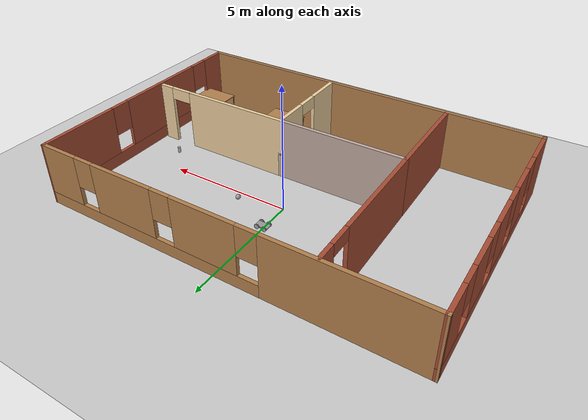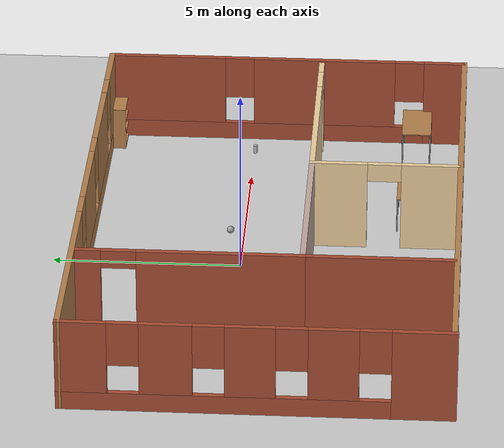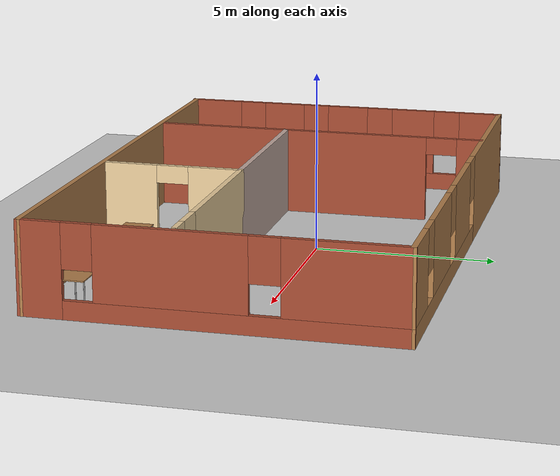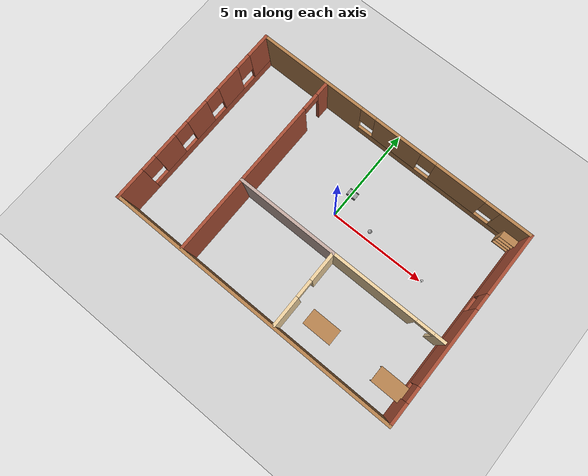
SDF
<sdf version="1.6">
 <world name="default">
  <model name="ground_plane">
   <static>1</static>
   <link name="link">
    <collision name="collision">
     <geometry><plane><normal>0 0 1</normal><size>100 100</size></plane></geometry>
     <surface>
      <contact><collide_bitmask>65535</collide_bitmask></contact>
      <friction><ode><mu>100</mu><mu2>50</mu2></ode></friction>
     </surface>
    </collision>
    <visual name="visual">
     <cast_shadows>0</cast_shadows>
     <geometry><plane><normal>0 0 1</normal><size>100 100</size></plane></geometry>
     <material>
      <script><uri>file://media/materials/scripts/gazebo.material</uri><name>Gazebo/Grey</name></script>
     </material>
    </visual>
   </link>
  </model>
  <model name="project_structure">
   <pose>-0.032624 -0.85735 0 0 -0 0</pose>
   <link name="Wall_15">
    <collision name="Wall_15_Collision">
     <geometry><box><size>14.9541 0.15 2.5</size></box></geometry>
     <pose>0 0 1.25 0 -0 0</pose>
    </collision>
    <visual name="Wall_15_Visual">
     <pose>0 0 1.25 0 -0 0</pose>
     <geometry><box><size>14.9541 0.15 2.5</size></box></geometry>
     <material>
      <script><uri>file://media/materials/scripts/gazebo.material</uri><name>Gazebo/Wood</name></script>
      <ambient>0.921569 0.807843 0.615686 1</ambient>
     </material>
     <meta><layer>0</layer></meta>
    </visual>
    <pose>0.011442 -4.91344 0 0 0 -0.003107</pose>
   </link>
   <link name="Wall_21">
    <pose>-7.41356 0.011558 0 0 -0 1.5708</pose>
    <visual name="Wall_21_Visual_0">
     <pose>-4.18397 0 1.25 0 -0 0</pose>
     <geometry><box><size>1.63206 0.15 2.5</size></box></geometry>
     <material>
      <script><uri>file://media/materials/scripts/gazebo.material</uri><name>Gazebo/Bricks</name></script>
      <ambient>0.760784 0.662745 0.627451 1</ambient>
     </material>
     <meta><layer>0</layer></meta>
    </visual>
    <collision name="Wall_21_Collision_0">
     <geometry><box><size>1.63206 0.15 2.5</size></box></geometry>
     <pose>-4.18397 0 1.25 0 -0 0</pose>
    </collision>
    <visual name="Wall_21_Visual_1">
     <pose>0.816032 0 0.25 0 -0 0</pose>
     <geometry><box><size>8.36794 0.15 0.5</size></box></geometry>
     <material>
      <script><uri>file://media/materials/scripts/gazebo.material</uri><name>Gazebo/Bricks</name></script>
      <ambient>0.760784 0.662745 0.627451 1</ambient>
     </material>
     <meta><layer>0</layer></meta>
    </visual>
    <collision name="Wall_21_Collision_1">
     <geometry><box><size>8.36794 0.15 0.5</size></box></geometry>
     <pose>0.816032 0 0.25 0 -0 0</pose>
    </collision>
    <visual name="Wall_21_Visual_2">
     <pose>-1.93374 0 1.5 0 -0 0</pose>
     <geometry><box><size>1.26839 0.15 2</size></box></geometry>
     <material>
      <script><uri>file://media/materials/scripts/gazebo.material</uri><name>Gazebo/Bricks</name></script>
      <ambient>0.760784 0.662745 0.627451 1</ambient>
     </material>
     <meta><layer>0</layer></meta>
    </visual>
    <collision name="Wall_21_Collision_2">
     <geometry><box><size>1.26839 0.15 2</size></box></geometry>
     <pose>-1.93374 0 1.5 0 -0 0</pose>
    </collision>
    <visual name="Wall_21_Visual_3">
     <pose>0.134648 0 1.5 0 -0 0</pose>
     <geometry><box><size>1.26839 0.15 2</size></box></geometry>
     <material>
      <script><uri>file://media/materials/scripts/gazebo.material</uri><name>Gazebo/Bricks</name></script>
      <ambient>0.760784 0.662745 0.627451 1</ambient>
     </material>
     <meta><layer>0</layer></meta>
    </visual>
    <collision name="Wall_21_Collision_3">
     <geometry><box><size>1.26839 0.15 2</size></box></geometry>
     <pose>0.134648 0 1.5 0 -0 0</pose>
    </collision>
    <visual name="Wall_21_Visual_4">
     <pose>2.23346 0 1.5 0 -0 0</pose>
     <geometry><box><size>1.32923 0.15 2</size></box></geometry>
     <material>
      <script><uri>file://media/materials/scripts/gazebo.material</uri><name>Gazebo/Bricks</name></script>
      <ambient>0.760784 0.662745 0.627451 1</ambient>
     </material>
     <meta><layer>0</layer></meta>
    </visual>
    <collision name="Wall_21_Collision_4">
     <geometry><box><size>1.32923 0.15 2</size></box></geometry>
     <pose>2.23346 0 1.5 0 -0 0</pose>
    </collision>
    <visual name="Wall_21_Visual_5">
     <pose>4.34903 0 1.5 0 -0 0</pose>
     <geometry><box><size>1.30193 0.15 2</size></box></geometry>
     <material>
      <script><uri>file://media/materials/scripts/gazebo.material</uri><name>Gazebo/Bricks</name></script>
      <ambient>0.760784 0.662745 0.627451 1</ambient>
     </material>
     <meta><layer>0</layer></meta>
    </visual>
    <collision name="Wall_21_Collision_5">
     <geometry><box><size>1.30193 0.15 2</size></box></geometry>
     <pose>4.34903 0 1.5 0 -0 0</pose>
    </collision>
    <visual name="Wall_21_Visual_6">
     <pose>-2.96794 0 1.9 0 -0 0</pose>
     <geometry><box><size>0.8 0.15 1.2</size></box></geometry>
     <material>
      <script><uri>file://media/materials/scripts/gazebo.material</uri><name>Gazebo/Bricks</name></script>
      <ambient>0.760784 0.662745 0.627451 1</ambient>
     </material>
     <meta><layer>0</layer></meta>
    </visual>
    <collision name="Wall_21_Collision_6">
     <geometry><box><size>0.8 0.15 1.2</size></box></geometry>
     <pose>-2.96794 0 1.9 0 -0 0</pose>
    </collision>
    <visual name="Wall_21_Visual_7">
     <pose>-0.899547 0 1.9 0 -0 0</pose>
     <geometry><box><size>0.8 0.15 1.2</size></box></geometry>
     <material>
      <script><uri>file://media/materials/scripts/gazebo.material</uri><name>Gazebo/Bricks</name></script>
      <ambient>0.760784 0.662745 0.627451 1</ambient>
     </material>
     <meta><layer>0</layer></meta>
    </visual>
    <collision name="Wall_21_Collision_7">
     <geometry><box><size>0.8 0.15 1.2</size></box></geometry>
     <pose>-0.899547 0 1.9 0 -0 0</pose>
    </collision>
    <visual name="Wall_21_Visual_8">
     <pose>1.16884 0 1.9 0 -0 0</pose>
     <geometry><box><size>0.8 0.15 1.2</size></box></geometry>
     <material>
      <script><uri>file://media/materials/scripts/gazebo.material</uri><name>Gazebo/Bricks</name></script>
      <ambient>0.760784 0.662745 0.627451 1</ambient>
     </material>
     <meta><layer>0</layer></meta>
    </visual>
    <collision name="Wall_21_Collision_8">
     <geometry><box><size>0.8 0.15 1.2</size></box></geometry>
     <pose>1.16884 0 1.9 0 -0 0</pose>
    </collision>
    <visual name="Wall_21_Visual_9">
     <pose>3.29807 0 1.9 0 -0 0</pose>
     <geometry><box><size>0.8 0.15 1.2</size></box></geometry>
     <material>
      <script><uri>file://media/materials/scripts/gazebo.material</uri><name>Gazebo/Bricks</name></script>
      <ambient>0.760784 0.662745 0.627451 1</ambient>
     </material>
     <meta><layer>0</layer></meta>
    </visual>
    <collision name="Wall_21_Collision_9">
     <geometry><box><size>0.8 0.15 1.2</size></box></geometry>
     <pose>3.29807 0 1.9 0 -0 0</pose>
    </collision>
   </link>
   <link name="Wall_23">
    <pose>7.41344 -0.011442 0 0 -0 1.5708</pose>
    <visual name="Wall_23_Visual_0">
     <pose>-4.4006 0 1.25 0 -0 0</pose>
     <geometry><box><size>1.1988 0.15 2.5</size></box></geometry>
     <material>
      <script><uri>file://media/materials/scripts/gazebo.material</uri><name>Gazebo/Bricks</name></script>
      <ambient>0.921569 0.807843 0.615686 1</ambient>
     </material>
     <meta><layer>0</layer></meta>
    </visual>
    <collision name="Wall_23_Collision_0">
     <geometry><box><size>1.1988 0.15 2.5</size></box></geometry>
     <pose>-4.4006 0 1.25 0 -0 0</pose>
    </collision>
    <visual name="Wall_23_Visual_1">
     <pose>0.5994 0 0.25 0 -0 0</pose>
     <geometry><box><size>8.8012 0.15 0.5</size></box></geometry>
     <material>
      <script><uri>file://media/materials/scripts/gazebo.material</uri><name>Gazebo/Bricks</name></script>
      <ambient>0.921569 0.807843 0.615686 1</ambient>
     </material>
     <meta><layer>0</layer></meta>
    </visual>
    <collision name="Wall_23_Collision_1">
     <geometry><box><size>8.8012 0.15 0.5</size></box></geometry>
     <pose>0.5994 0 0.25 0 -0 0</pose>
    </collision>
    <visual name="Wall_23_Visual_2">
     <pose>-1.02863 0 1.5 0 -0 0</pose>
     <geometry><box><size>3.94513 0.15 2</size></box></geometry>
     <material>
      <script><uri>file://media/materials/scripts/gazebo.material</uri><name>Gazebo/Bricks</name></script>
      <ambient>0.921569 0.807843 0.615686 1</ambient>
     </material>
     <meta><layer>0</layer></meta>
    </visual>
    <collision name="Wall_23_Collision_2">
     <geometry><box><size>3.94513 0.15 2</size></box></geometry>
     <pose>-1.02863 0 1.5 0 -0 0</pose>
    </collision>
    <visual name="Wall_23_Visual_3">
     <pose>3.37196 0 1.5 0 -0 0</pose>
     <geometry><box><size>3.25607 0.15 2</size></box></geometry>
     <material>
      <script><uri>file://media/materials/scripts/gazebo.material</uri><name>Gazebo/Bricks</name></script>
      <ambient>0.921569 0.807843 0.615686 1</ambient>
     </material>
     <meta><layer>0</layer></meta>
    </visual>
    <collision name="Wall_23_Collision_3">
     <geometry><box><size>3.25607 0.15 2</size></box></geometry>
     <pose>3.37196 0 1.5 0 -0 0</pose>
    </collision>
    <visual name="Wall_23_Visual_4">
     <pose>-3.4012 0 1.9 0 -0 0</pose>
     <geometry><box><size>0.8 0.15 1.2</size></box></geometry>
     <material>
      <script><uri>file://media/materials/scripts/gazebo.material</uri><name>Gazebo/Bricks</name></script>
      <ambient>0.921569 0.807843 0.615686 1</ambient>
     </material>
     <meta><layer>0</layer></meta>
    </visual>
    <collision name="Wall_23_Collision_4">
     <geometry><box><size>0.8 0.15 1.2</size></box></geometry>
     <pose>-3.4012 0 1.9 0 -0 0</pose>
    </collision>
    <visual name="Wall_23_Visual_5">
     <pose>1.34393 0 1.9 0 -0 0</pose>
     <geometry><box><size>0.8 0.15 1.2</size></box></geometry>
     <material>
      <script><uri>file://media/materials/scripts/gazebo.material</uri><name>Gazebo/Bricks</name></script>
      <ambient>0.921569 0.807843 0.615686 1</ambient>
     </material>
     <meta><layer>0</layer></meta>
    </visual>
    <collision name="Wall_23_Collision_5">
     <geometry><box><size>0.8 0.15 1.2</size></box></geometry>
     <pose>1.34393 0 1.9 0 -0 0</pose>
    </collision>
   </link>
   <link name="Wall_25">
    <pose>-5.8e-05 4.92506 0 0 0 -0.001551</pose>
    <visual name="Wall_25_Visual_0">
     <pose>-4.62864 0 1.25 0 -0 0</pose>
     <geometry><box><size>5.71975 0.15 2.5</size></box></geometry>
     <material>
      <script><uri>file://media/materials/scripts/gazebo.material</uri><name>Gazebo/Wood</name></script>
      <ambient>0.760784 0.662745 0.627451 1</ambient>
     </material>
     <meta><layer>0</layer></meta>
    </visual>
    <collision name="Wall_25_Collision_0">
     <geometry><box><size>5.71975 0.15 2.5</size></box></geometry>
     <pose>-4.62864 0 1.25 0 -0 0</pose>
    </collision>
    <visual name="Wall_25_Visual_1">
     <pose>2.85987 0 0.25 0 -0 0</pose>
     <geometry><box><size>9.25727 0.15 0.5</size></box></geometry>
     <material>
      <script><uri>file://media/materials/scripts/gazebo.material</uri><name>Gazebo/Wood</name></script>
      <ambient>0.760784 0.662745 0.627451 1</ambient>
     </material>
     <meta><layer>0</layer></meta>
    </visual>
    <collision name="Wall_25_Collision_1">
     <geometry><box><size>9.25727 0.15 0.5</size></box></geometry>
     <pose>2.85987 0 0.25 0 -0 0</pose>
    </collision>
    <visual name="Wall_25_Visual_2">
     <pose>0.300724 0 1.5 0 -0 0</pose>
     <geometry><box><size>2.53897 0.15 2</size></box></geometry>
     <material>
      <script><uri>file://media/materials/scripts/gazebo.material</uri><name>Gazebo/Wood</name></script>
      <ambient>0.760784 0.662745 0.627451 1</ambient>
     </material>
     <meta><layer>0</layer></meta>
    </visual>
    <collision name="Wall_25_Collision_2">
     <geometry><box><size>2.53897 0.15 2</size></box></geometry>
     <pose>0.300724 0 1.5 0 -0 0</pose>
    </collision>
    <visual name="Wall_25_Visual_3">
     <pose>3.69995 0 1.5 0 -0 0</pose>
     <geometry><box><size>2.65947 0.15 2</size></box></geometry>
     <material>
      <script><uri>file://media/materials/scripts/gazebo.material</uri><name>Gazebo/Wood</name></script>
      <ambient>0.760784 0.662745 0.627451 1</ambient>
     </material>
     <meta><layer>0</layer></meta>
    </visual>
    <collision name="Wall_25_Collision_3">
     <geometry><box><size>2.65947 0.15 2</size></box></geometry>
     <pose>3.69995 0 1.5 0 -0 0</pose>
    </collision>
    <visual name="Wall_25_Visual_4">
     <pose>6.65909 0 1.5 0 -0 0</pose>
     <geometry><box><size>1.65883 0.15 2</size></box></geometry>
     <material>
      <script><uri>file://media/materials/scripts/gazebo.material</uri><name>Gazebo/Wood</name></script>
      <ambient>0.760784 0.662745 0.627451 1</ambient>
     </material>
     <meta><layer>0</layer></meta>
    </visual>
    <collision name="Wall_25_Collision_4">
     <geometry><box><size>1.65883 0.15 2</size></box></geometry>
     <pose>6.65909 0 1.5 0 -0 0</pose>
    </collision>
    <visual name="Wall_25_Visual_5">
     <pose>-1.36876 0 1.9 0 -0 0</pose>
     <geometry><box><size>0.8 0.15 1.2</size></box></geometry>
     <material>
      <script><uri>file://media/materials/scripts/gazebo.material</uri><name>Gazebo/Wood</name></script>
      <ambient>0.760784 0.662745 0.627451 1</ambient>
     </material>
     <meta><layer>0</layer></meta>
    </visual>
    <collision name="Wall_25_Collision_5">
     <geometry><box><size>0.8 0.15 1.2</size></box></geometry>
     <pose>-1.36876 0 1.9 0 -0 0</pose>
    </collision>
    <visual name="Wall_25_Visual_6">
     <pose>1.97021 0 1.9 0 -0 0</pose>
     <geometry><box><size>0.8 0.15 1.2</size></box></geometry>
     <material>
      <script><uri>file://media/materials/scripts/gazebo.material</uri><name>Gazebo/Wood</name></script>
      <ambient>0.760784 0.662745 0.627451 1</ambient>
     </material>
     <meta><layer>0</layer></meta>
    </visual>
    <collision name="Wall_25_Collision_6">
     <geometry><box><size>0.8 0.15 1.2</size></box></geometry>
     <pose>1.97021 0 1.9 0 -0 0</pose>
    </collision>
    <visual name="Wall_25_Visual_7">
     <pose>5.42968 0 1.9 0 -0 0</pose>
     <geometry><box><size>0.8 0.15 1.2</size></box></geometry>
     <material>
      <script><uri>file://media/materials/scripts/gazebo.material</uri><name>Gazebo/Wood</name></script>
      <ambient>0.760784 0.662745 0.627451 1</ambient>
     </material>
     <meta><layer>0</layer></meta>
    </visual>
    <collision name="Wall_25_Collision_7">
     <geometry><box><size>0.8 0.15 1.2</size></box></geometry>
     <pose>5.42968 0 1.9 0 -0 0</pose>
    </collision>
   </link>
   <link name="Wall_27">
    <pose>-3.76645 1.95597 0 0 0 -1.5708</pose>
    <visual name="Wall_27_Visual_0">
     <pose>-2.61475 0 1.25 0 -0 0</pose>
     <geometry><box><size>0.770497 0.15 2.5</size></box></geometry>
     <material>
      <script><uri>file://media/materials/scripts/gazebo.material</uri><name>Gazebo/Bricks</name></script>
      <ambient>0.760784 0.662745 0.627451 1</ambient>
     </material>
     <meta><layer>0</layer></meta>
    </visual>
    <collision name="Wall_27_Collision_0">
     <geometry><box><size>0.770497 0.15 2.5</size></box></geometry>
     <pose>-2.61475 0 1.25 0 -0 0</pose>
    </collision>
    <visual name="Wall_27_Visual_1">
     <pose>0.835249 0 1.25 0 -0 0</pose>
     <geometry><box><size>4.3295 0.15 2.5</size></box></geometry>
     <material>
      <script><uri>file://media/materials/scripts/gazebo.material</uri><name>Gazebo/Bricks</name></script>
      <ambient>0.760784 0.662745 0.627451 1</ambient>
     </material>
     <meta><layer>0</layer></meta>
    </visual>
    <collision name="Wall_27_Collision_1">
     <geometry><box><size>4.3295 0.15 2.5</size></box></geometry>
     <pose>0.835249 0 1.25 0 -0 0</pose>
    </collision>
    <visual name="Wall_27_Visual_2">
     <pose>-1.7795 0 2.25 0 -0 0</pose>
     <geometry><box><size>0.9 0.15 0.5</size></box></geometry>
     <material>
      <script><uri>file://media/materials/scripts/gazebo.material</uri><name>Gazebo/Bricks</name></script>
      <ambient>0.760784 0.662745 0.627451 1</ambient>
     </material>
     <meta><layer>0</layer></meta>
    </visual>
    <collision name="Wall_27_Collision_2">
     <geometry><box><size>0.9 0.15 0.5</size></box></geometry>
     <pose>-1.7795 0 2.25 0 -0 0</pose>
    </collision>
   </link>
   <link name="Wall_28">
    <collision name="Wall_28_Collision">
     <geometry><box><size>5.25 0.15 2.5</size></box></geometry>
     <pose>0 0 1.25 0 -0 0</pose>
    </collision>
    <visual name="Wall_28_Visual">
     <pose>0 0 1.25 0 -0 0</pose>
     <geometry><box><size>5.25 0.15 2.5</size></box></geometry>
     <material>
      <script><uri>file://media/materials/scripts/gazebo.material</uri><name>Gazebo/Grey</name></script>
      <ambient>0.760784 0.662745 0.627451 1</ambient>
     </material>
     <meta><layer>0</layer></meta>
    </visual>
    <pose>-1.21644 -0.969031 0 0 -0 0</pose>
   </link>
   <link name="Wall_29">
    <pose>1.33356 -2.89403 0 0 0 -1.5708</pose>
    <visual name="Wall_29_Visual_0">
     <pose>-1.22424 0 1.25 0 -0 0</pose>
     <geometry><box><size>1.55151 0.15 2.5</size></box></geometry>
     <material>
      <script><uri>file://media/materials/scripts/gazebo.material</uri><name>Gazebo/Grey</name></script>
      <ambient>0.921569 0.807843 0.615686 1</ambient>
     </material>
     <meta><layer>0</layer></meta>
    </visual>
    <collision name="Wall_29_Collision_0">
     <geometry><box><size>1.55151 0.15 2.5</size></box></geometry>
     <pose>-1.22424 0 1.25 0 -0 0</pose>
    </collision>
    <visual name="Wall_29_Visual_1">
     <pose>1.22576 0 1.25 0 -0 0</pose>
     <geometry><box><size>1.54849 0.15 2.5</size></box></geometry>
     <material>
      <script><uri>file://media/materials/scripts/gazebo.material</uri><name>Gazebo/Grey</name></script>
      <ambient>0.921569 0.807843 0.615686 1</ambient>
     </material>
     <meta><layer>0</layer></meta>
    </visual>
    <collision name="Wall_29_Collision_1">
     <geometry><box><size>1.54849 0.15 2.5</size></box></geometry>
     <pose>1.22576 0 1.25 0 -0 0</pose>
    </collision>
    <visual name="Wall_29_Visual_2">
     <pose>0.001512 0 2.25 0 -0 0</pose>
     <geometry><box><size>0.9 0.15 0.5</size></box></geometry>
     <material>
      <script><uri>file://media/materials/scripts/gazebo.material</uri><name>Gazebo/Grey</name></script>
      <ambient>0.921569 0.807843 0.615686 1</ambient>
     </material>
     <meta><layer>0</layer></meta>
    </visual>
    <collision name="Wall_29_Collision_2">
     <geometry><box><size>0.9 0.15 0.5</size></box></geometry>
     <pose>0.001512 0 2.25 0 -0 0</pose>
    </collision>
   </link>
   <link name="Wall_31">
    <pose>4.25855 -0.969031 0 0 -0 0</pose>
    <visual name="Wall_31_Visual_0">
     <pose>-0.749855 0 1.25 0 -0 0</pose>
     <geometry><box><size>4.50029 0.15 2.5</size></box></geometry>
     <material>
      <script><uri>file://media/materials/scripts/gazebo.material</uri><name>Gazebo/Grey</name></script>
      <ambient>0.921569 0.807843 0.615686 1</ambient>
     </material>
     <meta><layer>0</layer></meta>
    </visual>
    <collision name="Wall_31_Collision_0">
     <geometry><box><size>4.50029 0.15 2.5</size></box></geometry>
     <pose>-0.749855 0 1.25 0 -0 0</pose>
    </collision>
    <visual name="Wall_31_Visual_1">
     <pose>2.70015 0 1.25 0 -0 0</pose>
     <geometry><box><size>0.599711 0.15 2.5</size></box></geometry>
     <material>
      <script><uri>file://media/materials/scripts/gazebo.material</uri><name>Gazebo/Grey</name></script>
      <ambient>0.921569 0.807843 0.615686 1</ambient>
     </material>
     <meta><layer>0</layer></meta>
    </visual>
    <collision name="Wall_31_Collision_1">
     <geometry><box><size>0.599711 0.15 2.5</size></box></geometry>
     <pose>2.70015 0 1.25 0 -0 0</pose>
    </collision>
    <visual name="Wall_31_Visual_2">
     <pose>1.95029 0 2.25 0 -0 0</pose>
     <geometry><box><size>0.9 0.15 0.5</size></box></geometry>
     <material>
      <script><uri>file://media/materials/scripts/gazebo.material</uri><name>Gazebo/Grey</name></script>
      <ambient>0.921569 0.807843 0.615686 1</ambient>
     </material>
     <meta><layer>0</layer></meta>
    </visual>
    <collision name="Wall_31_Collision_2">
     <geometry><box><size>0.9 0.15 0.5</size></box></geometry>
     <pose>1.95029 0 2.25 0 -0 0</pose>
    </collision>
   </link>
   <link name="Wall_33">
    <collision name="Wall_33_Collision">
     <geometry><box><size>4 0.15 2.5</size></box></geometry>
     <pose>0 0 1.25 0 -0 0</pose>
    </collision>
    <visual name="Wall_33_Visual">
     <pose>0 0 1.25 0 -0 0</pose>
     <geometry><box><size>4 0.15 2.5</size></box></geometry>
     <material>
      <script><uri>file://media/materials/scripts/gazebo.material</uri><name>Gazebo/Bricks</name></script>
      <ambient>0.760784 0.662745 0.627451 1</ambient>
     </material>
     <meta><layer>0</layer></meta>
    </visual>
    <pose>-3.76645 -2.89403 0 0 0 -1.5708</pose>
   </link>
   <static>1</static>
  </model>
  <model name="four_wd_0">
   <link name="link_0">
    <pose>-6.8e-05 0 0 0 -0 0</pose>
    <inertial>
     <mass>1</mass>
     <inertia>
      <ixx>0.166667</ixx>
      <ixy>0</ixy>
      <ixz>0</ixz>
      <iyy>0.166667</iyy>
      <iyz>0</iyz>
      <izz>0.166667</izz>
     </inertia>
    </inertial>
    <visual name="visual">
     <geometry><box><size>0.5 0.3 0.05</size></box></geometry>
     <material>
      <lighting>1</lighting>
      <script><uri>file://media/materials/scripts/gazebo.material</uri><name>Gazebo/Grey</name></script>
      <shader type="pixel"><normal_map>__default__</normal_map></shader>
      <ambient>0.3 0.3 0.3 1</ambient>
      <diffuse>0.7 0.7 0.7 1</diffuse>
      <specular>0.01 0.01 0.01 1</specular>
      <emissive>0 0 0 1</emissive>
     </material>
    </visual>
    <collision name="collision">
     <geometry><box><size>0.5 0.3 0.05</size></box></geometry>
     <surface>
      <friction>
       <ode><mu>1</mu><mu2>1</mu2><fdir1>0 0 0</fdir1><slip1>0</slip1><slip2>0</slip2></ode>
       <torsional>
        <coefficient>1</coefficient>
        <patch_radius>0</patch_radius>
        <surface_radius>0</surface_radius>
        <use_patch_radius>1</use_patch_radius>
        <ode><slip>0</slip></ode>
       </torsional>
      </friction>
      <bounce><restitution_coefficient>0</restitution_coefficient><threshold>1e+06</threshold></bounce>
      <contact>
       <collide_without_contact>0</collide_without_contact>
       <collide_without_contact_bitmask>1</collide_without_contact_bitmask>
       <collide_bitmask>1</collide_bitmask>
       <ode>
        <soft_cfm>0</soft_cfm>
        <soft_erp>0.2</soft_erp>
        <kp>1e+13</kp>
        <kd>1</kd>
        <max_vel>0.01</max_vel>
        <min_depth>0</min_depth>
       </ode>
       <bullet>
        <split_impulse>1</split_impulse>
        <split_impulse_penetration_threshold>-0.01</split_impulse_penetration_threshold>
        <soft_cfm>0</soft_cfm>
        <soft_erp>0.2</soft_erp>
        <kp>1e+13</kp>
        <kd>1</kd>
       </bullet>
      </contact>
     </surface>
    </collision>
   </link>
   <link name="link_1_clone">
    <pose>0.149932 0.16501 0 1.5707 -0 0</pose>
    <inertial>
     <mass>1</mass>
     <inertia><ixx>0.145833</ixx><ixy>0</ixy><ixz>0</ixz><iyy>0.145833</iyy><iyz>0</iyz><izz>0.125</izz></inertia>
    </inertial>
    <visual name="visual">
     <geometry><cylinder><radius>0.1</radius><length>0.03</length></cylinder></geometry>
     <material>
      <lighting>1</lighting>
      <script><uri>file://media/materials/scripts/gazebo.material</uri><name>Gazebo/Grey</name></script>
      <shader type="pixel"><normal_map>__default__</normal_map></shader>
      <ambient>0.3 0.3 0.3 1</ambient>
      <diffuse>0.7 0.7 0.7 1</diffuse>
      <specular>0.01 0.01 0.01 1</specular>
      <emissive>0 0 0 1</emissive>
     </material>
    </visual>
    <collision name="collision">
     <geometry><cylinder><radius>0.1</radius><length>0.03</length></cylinder></geometry>
     <surface>
      <friction>
       <ode><mu>1</mu><mu2>1</mu2><fdir1>0 0 0</fdir1><slip1>0</slip1><slip2>0</slip2></ode>
       <torsional>
        <coefficient>1</coefficient>
        <patch_radius>0</patch_radius>
        <surface_radius>0</surface_radius>
        <use_patch_radius>1</use_patch_radius>
        <ode><slip>0</slip></ode>
       </torsional>
      </friction>
      <bounce><restitution_coefficient>0</restitution_coefficient><threshold>1e+06</threshold></bounce>
      <contact>
       <collide_without_contact>0</collide_without_contact>
       <collide_without_contact_bitmask>1</collide_without_contact_bitmask>
       <collide_bitmask>1</collide_bitmask>
       <ode>
        <soft_cfm>0</soft_cfm>
        <soft_erp>0.2</soft_erp>
        <kp>1e+13</kp>
        <kd>1</kd>
        <max_vel>0.01</max_vel>
        <min_depth>0</min_depth>
       </ode>
       <bullet>
        <split_impulse>1</split_impulse>
        <split_impulse_penetration_threshold>-0.01</split_impulse_penetration_threshold>
        <soft_cfm>0</soft_cfm>
        <soft_erp>0.2</soft_erp>
        <kp>1e+13</kp>
        <kd>1</kd>
       </bullet>
      </contact>
     </surface>
    </collision>
   </link>
   <link name="link_1_clone_1">
    <pose>-0.150068 0.16501 0 1.5707 -0 0</pose>
    <inertial>
     <mass>1</mass>
     <inertia><ixx>0.145833</ixx><ixy>0</ixy><ixz>0</ixz><iyy>0.145833</iyy><iyz>0</iyz><izz>0.125</izz></inertia>
    </inertial>
    <visual name="visual">
     <geometry><cylinder><radius>0.1</radius><length>0.03</length></cylinder></geometry>
     <material>
      <lighting>1</lighting>
      <script><uri>file://media/materials/scripts/gazebo.material</uri><name>Gazebo/Grey</name></script>
      <shader type="pixel"><normal_map>__default__</normal_map></shader>
      <ambient>0.3 0.3 0.3 1</ambient>
      <diffuse>0.7 0.7 0.7 1</diffuse>
      <specular>0.01 0.01 0.01 1</specular>
      <emissive>0 0 0 1</emissive>
     </material>
    </visual>
    <collision name="collision">
     <geometry><cylinder><radius>0.1</radius><length>0.03</length></cylinder></geometry>
     <surface>
      <friction>
       <ode><mu>1</mu><mu2>1</mu2><fdir1>0 0 0</fdir1><slip1>0</slip1><slip2>0</slip2></ode>
       <torsional>
        <coefficient>1</coefficient>
        <patch_radius>0</patch_radius>
        <surface_radius>0</surface_radius>
        <use_patch_radius>1</use_patch_radius>
        <ode><slip>0</slip></ode>
       </torsional>
      </friction>
      <bounce><restitution_coefficient>0</restitution_coefficient><threshold>1e+06</threshold></bounce>
      <contact>
       <collide_without_contact>0</collide_without_contact>
       <collide_without_contact_bitmask>1</collide_without_contact_bitmask>
       <collide_bitmask>1</collide_bitmask>
       <ode>
        <soft_cfm>0</soft_cfm>
        <soft_erp>0.2</soft_erp>
        <kp>1e+13</kp>
        <kd>1</kd>
        <max_vel>0.01</max_vel>
        <min_depth>0</min_depth>
       </ode>
       <bullet>
        <split_impulse>1</split_impulse>
        <split_impulse_penetration_threshold>-0.01</split_impulse_penetration_threshold>
        <soft_cfm>0</soft_cfm>
        <soft_erp>0.2</soft_erp>
        <kp>1e+13</kp>
        <kd>1</kd>
       </bullet>
      </contact>
     </surface>
    </collision>
   </link>
   <link name="link_1_clone_1_clone">
    <pose>-0.150068 -0.16501 0 1.5707 -0 0</pose>
    <inertial>
     <mass>1</mass>
     <inertia><ixx>0.145833</ixx><ixy>0</ixy><ixz>0</ixz><iyy>0.145833</iyy><iyz>0</iyz><izz>0.125</izz></inertia>
    </inertial>
    <visual name="visual">
     <geometry><cylinder><radius>0.1</radius><length>0.03</length></cylinder></geometry>
     <material>
      <lighting>1</lighting>
      <script><uri>file://media/materials/scripts/gazebo.material</uri><name>Gazebo/Grey</name></script>
      <shader type="pixel"><normal_map>__default__</normal_map></shader>
      <ambient>0.3 0.3 0.3 1</ambient>
      <diffuse>0.7 0.7 0.7 1</diffuse>
      <specular>0.01 0.01 0.01 1</specular>
      <emissive>0 0 0 1</emissive>
     </material>
    </visual>
    <collision name="collision">
     <geometry><cylinder><radius>0.1</radius><length>0.03</length></cylinder></geometry>
     <surface>
      <friction>
       <ode><mu>1</mu><mu2>1</mu2><fdir1>0 0 0</fdir1><slip1>0</slip1><slip2>0</slip2></ode>
       <torsional>
        <coefficient>1</coefficient>
        <patch_radius>0</patch_radius>
        <surface_radius>0</surface_radius>
        <use_patch_radius>1</use_patch_radius>
        <ode><slip>0</slip></ode>
       </torsional>
      </friction>
      <bounce><restitution_coefficient>0</restitution_coefficient><threshold>1e+06</threshold></bounce>
      <contact>
       <collide_without_contact>0</collide_without_contact>
       <collide_without_contact_bitmask>1</collide_without_contact_bitmask>
       <collide_bitmask>1</collide_bitmask>
       <ode>
        <soft_cfm>0</soft_cfm>
        <soft_erp>0.2</soft_erp>
        <kp>1e+13</kp>
        <kd>1</kd>
        <max_vel>0.01</max_vel>
        <min_depth>0</min_depth>
       </ode>
       <bullet>
        <split_impulse>1</split_impulse>
        <split_impulse_penetration_threshold>-0.01</split_impulse_penetration_threshold>
        <soft_cfm>0</soft_cfm>
        <soft_erp>0.2</soft_erp>
        <kp>1e+13</kp>
        <kd>1</kd>
       </bullet>
      </contact>
     </surface>
    </collision>
   </link>
   <link name="link_1_clone_1_clone_0">
    <pose>0.149932 -0.16501 0 1.5707 -0 0</pose>
    <inertial>
     <mass>1</mass>
     <inertia><ixx>0.145833</ixx><ixy>0</ixy><ixz>0</ixz><iyy>0.145833</iyy><iyz>0</iyz><izz>0.125</izz></inertia>
    </inertial>
    <visual name="visual">
     <geometry><cylinder><radius>0.1</radius><length>0.03</length></cylinder></geometry>
     <material>
      <lighting>1</lighting>
      <script><uri>file://media/materials/scripts/gazebo.material</uri><name>Gazebo/Grey</name></script>
      <shader type="pixel"><normal_map>__default__</normal_map></shader>
      <ambient>0.3 0.3 0.3 1</ambient>
      <diffuse>0.7 0.7 0.7 1</diffuse>
      <specular>0.01 0.01 0.01 1</specular>
      <emissive>0 0 0 1</emissive>
     </material>
    </visual>
    <collision name="collision">
     <geometry><cylinder><radius>0.1</radius><length>0.03</length></cylinder></geometry>
     <surface>
      <friction>
       <ode><mu>1</mu><mu2>1</mu2><fdir1>0 0 0</fdir1><slip1>0</slip1><slip2>0</slip2></ode>
       <torsional>
        <coefficient>1</coefficient>
        <patch_radius>0</patch_radius>
        <surface_radius>0</surface_radius>
        <use_patch_radius>1</use_patch_radius>
        <ode><slip>0</slip></ode>
       </torsional>
      </friction>
      <bounce><restitution_coefficient>0</restitution_coefficient><threshold>1e+06</threshold></bounce>
      <contact>
       <collide_without_contact>0</collide_without_contact>
       <collide_without_contact_bitmask>1</collide_without_contact_bitmask>
       <collide_bitmask>1</collide_bitmask>
       <ode>
        <soft_cfm>0</soft_cfm>
        <soft_erp>0.2</soft_erp>
        <kp>1e+13</kp>
        <kd>1</kd>
        <max_vel>0.01</max_vel>
        <min_depth>0</min_depth>
       </ode>
       <bullet>
        <split_impulse>1</split_impulse>
        <split_impulse_penetration_threshold>-0.01</split_impulse_penetration_threshold>
        <soft_cfm>0</soft_cfm>
        <soft_erp>0.2</soft_erp>
        <kp>1e+13</kp>
        <kd>1</kd>
       </bullet>
      </contact>
     </surface>
    </collision>
   </link>
   <joint name="link_0_JOINT_3" type="revolute">
    <parent>link_0</parent>
    <child>link_1_clone</child>
    <axis>
     <xyz>1 0 0</xyz>
     <use_parent_model_frame>0</use_parent_model_frame>
     <limit>
      <lower>-1.79769e+308</lower>
      <upper>1.79769e+308</upper>
      <effort>-1</effort>
      <velocity>-1</velocity>
     </limit>
     <dynamics>
      <spring_reference>0</spring_reference>
      <spring_stiffness>0</spring_stiffness>
      <damping>0</damping>
     </dynamics>
    </axis>
    <physics>
     <ode><limit><cfm>0</cfm><erp>0.2</erp></limit><suspension><cfm>0</cfm><erp>0.2</erp></suspension></ode>
    </physics>
   </joint>
   <joint name="link_0_JOINT_4" type="revolute">
    <parent>link_0</parent>
    <child>link_1_clone_1</child>
    <axis>
     <xyz>0 0 1</xyz>
     <use_parent_model_frame>0</use_parent_model_frame>
     <limit>
      <lower>-1.79769e+308</lower>
      <upper>1.79769e+308</upper>
      <effort>-1</effort>
      <velocity>-1</velocity>
     </limit>
     <dynamics>
      <spring_reference>0</spring_reference>
      <spring_stiffness>0</spring_stiffness>
      <damping>0</damping>
     </dynamics>
    </axis>
    <physics>
     <ode><limit><cfm>0</cfm><erp>0.2</erp></limit><suspension><cfm>0</cfm><erp>0.2</erp></suspension></ode>
    </physics>
   </joint>
   <joint name="link_0_JOINT_5" type="revolute">
    <parent>link_0</parent>
    <child>link_1_clone_1_clone_0</child>
    <axis>
     <xyz>0 0 1</xyz>
     <use_parent_model_frame>0</use_parent_model_frame>
     <limit>
      <lower>-1.79769e+308</lower>
      <upper>1.79769e+308</upper>
      <effort>-1</effort>
      <velocity>-1</velocity>
     </limit>
     <dynamics>
      <spring_reference>0</spring_reference>
      <spring_stiffness>0</spring_stiffness>
      <damping>0</damping>
     </dynamics>
    </axis>
    <physics>
     <ode><limit><cfm>0</cfm><erp>0.2</erp></limit><suspension><cfm>0</cfm><erp>0.2</erp></suspension></ode>
    </physics>
   </joint>
   <joint name="link_0_JOINT_6" type="revolute">
    <parent>link_0</parent>
    <child>link_1_clone_1_clone</child>
    <axis>
     <xyz>0 0 1</xyz>
     <use_parent_model_frame>0</use_parent_model_frame>
     <limit>
      <lower>-1.79769e+308</lower>
      <upper>1.79769e+308</upper>
      <effort>-1</effort>
      <velocity>-1</velocity>
     </limit>
     <dynamics>
      <spring_reference>0</spring_reference>
      <spring_stiffness>0</spring_stiffness>
      <damping>0</damping>
     </dynamics>
    </axis>
    <physics>
     <ode><limit><cfm>0</cfm><erp>0.2</erp></limit><suspension><cfm>0</cfm><erp>0.2</erp></suspension></ode>
    </physics>
   </joint>
   <static>0</static>
   <pose>0.033717 1.28672 0.100001 -1e-06 4e-06 0.001962</pose>
  </model>
  <model name="table">
   <static>1</static>
   <link name="link">
    <collision name="surface">
     <pose>0 0 1 0 -0 0</pose>
     <geometry><box><size>1.5 0.8 0.03</size></box></geometry>
     <surface><friction><ode><mu>0.6</mu><mu2>0.6</mu2></ode></friction></surface>
    </collision>
    <visual name="visual1">
     <pose>0 0 1 0 -0 0</pose>
     <geometry><box><size>1.5 0.8 0.03</size></box></geometry>
     <material>
      <script><uri>file://media/materials/scripts/gazebo.material</uri><name>Gazebo/Wood</name></script>
     </material>
    </visual>
    <collision name="front_left_leg">
     <pose>0.68 0.38 0.5 0 -0 0</pose>
     <geometry><cylinder><radius>0.02</radius><length>1</length></cylinder></geometry>
    </collision>
    <visual name="front_left_leg">
     <pose>0.68 0.38 0.5 0 -0 0</pose>
     <geometry><cylinder><radius>0.02</radius><length>1</length></cylinder></geometry>
     <material>
      <script><uri>file://media/materials/scripts/gazebo.material</uri><name>Gazebo/Grey</name></script>
     </material>
    </visual>
    <collision name="front_right_leg">
     <pose>0.68 -0.38 0.5 0 -0 0</pose>
     <geometry><cylinder><radius>0.02</radius><length>1</length></cylinder></geometry>
    </collision>
    <visual name="front_right_leg">
     <pose>0.68 -0.38 0.5 0 -0 0</pose>
     <geometry><cylinder><radius>0.02</radius><length>1</length></cylinder></geometry>
     <material>
      <script><uri>file://media/materials/scripts/gazebo.material</uri><name>Gazebo/Grey</name></script>
     </material>
    </visual>
    <collision name="back_right_leg">
     <pose>-0.68 -0.38 0.5 0 -0 0</pose>
     <geometry><cylinder><radius>0.02</radius><length>1</length></cylinder></geometry>
    </collision>
    <visual name="back_right_leg">
     <pose>-0.68 -0.38 0.5 0 -0 0</pose>
     <geometry><cylinder><radius>0.02</radius><length>1</length></cylinder></geometry>
     <material>
      <script><uri>file://media/materials/scripts/gazebo.material</uri><name>Gazebo/Grey</name></script>
     </material>
    </visual>
    <collision name="back_left_leg">
     <pose>-0.68 0.38 0.5 0 -0 0</pose>
     <geometry><cylinder><radius>0.02</radius><length>1</length></cylinder></geometry>
    </collision>
    <visual name="back_left_leg">
     <pose>-0.68 0.38 0.5 0 -0 0</pose>
     <geometry><cylinder><radius>0.02</radius><length>1</length></cylinder></geometry>
     <material>
      <script><uri>file://media/materials/scripts/gazebo.material</uri><name>Gazebo/Grey</name></script>
     </material>
    </visual>
   </link>
   <pose>2.83244 -4.47992 0 0 -0 0</pose>
  </model>
  <model name="table_0">
   <static>1</static>
   <link name="link">
    <collision name="surface">
     <pose>0 0 1 0 -0 0</pose>
     <geometry><box><size>1.5 0.8 0.03</size></box></geometry>
     <surface><friction><ode><mu>0.6</mu><mu2>0.6</mu2></ode></friction></surface>
    </collision>
    <visual name="visual1">
     <pose>0 0 1 0 -0 0</pose>
     <geometry><box><size>1.5 0.8 0.03</size></box></geometry>
     <material>
      <script><uri>file://media/materials/scripts/gazebo.material</uri><name>Gazebo/Wood</name></script>
     </material>
    </visual>
    <collision name="front_left_leg">
     <pose>0.68 0.38 0.5 0 -0 0</pose>
     <geometry><cylinder><radius>0.02</radius><length>1</length></cylinder></geometry>
    </collision>
    <visual name="front_left_leg">
     <pose>0.68 0.38 0.5 0 -0 0</pose>
     <geometry><cylinder><radius>0.02</radius><length>1</length></cylinder></geometry>
     <material>
      <script><uri>file://media/materials/scripts/gazebo.material</uri><name>Gazebo/Grey</name></script>
     </material>
    </visual>
    <collision name="front_right_leg">
     <pose>0.68 -0.38 0.5 0 -0 0</pose>
     <geometry><cylinder><radius>0.02</radius><length>1</length></cylinder></geometry>
    </collision>
    <visual name="front_right_leg">
     <pose>0.68 -0.38 0.5 0 -0 0</pose>
     <geometry><cylinder><radius>0.02</radius><length>1</length></cylinder></geometry>
     <material>
      <script><uri>file://media/materials/scripts/gazebo.material</uri><name>Gazebo/Grey</name></script>
     </material>
    </visual>
    <collision name="back_right_leg">
     <pose>-0.68 -0.38 0.5 0 -0 0</pose>
     <geometry><cylinder><radius>0.02</radius><length>1</length></cylinder></geometry>
    </collision>
    <visual name="back_right_leg">
     <pose>-0.68 -0.38 0.5 0 -0 0</pose>
     <geometry><cylinder><radius>0.02</radius><length>1</length></cylinder></geometry>
     <material>
      <script><uri>file://media/materials/scripts/gazebo.material</uri><name>Gazebo/Grey</name></script>
     </material>
    </visual>
    <collision name="back_left_leg">
     <pose>-0.68 0.38 0.5 0 -0 0</pose>
     <geometry><cylinder><radius>0.02</radius><length>1</length></cylinder></geometry>
    </collision>
    <visual name="back_left_leg">
     <pose>-0.68 0.38 0.5 0 -0 0</pose>
     <geometry><cylinder><radius>0.02</radius><length>1</length></cylinder></geometry>
     <material>
      <script><uri>file://media/materials/scripts/gazebo.material</uri><name>Gazebo/Grey</name></script>
     </material>
    </visual>
   </link>
   <pose>6.62742 -4.52142 0 0 -0 0</pose>
  </model>
  <model name="bookshelf">
   <static>1</static>
   <link name="link">
    <inertial><mass>1</mass></inertial>
    <collision name="back">
     <pose>0 0.005 0.6 0 -0 0</pose>
     <geometry><box><size>0.9 0.01 1.2</size></box></geometry>
    </collision>
    <visual name="visual1">
     <pose>0 0.005 0.6 0 -0 0</pose>
     <geometry><box><size>0.9 0.01 1.2</size></box></geometry>
     <material>
      <script><uri>file://media/materials/scripts/gazebo.material</uri><name>Gazebo/Wood</name></script>
     </material>
    </visual>
    <collision name="left_side">
     <pose>0.45 -0.195 0.6 0 -0 0</pose>
     <geometry><box><size>0.02 0.4 1.2</size></box></geometry>
    </collision>
    <visual name="visual2">
     <pose>0.45 -0.195 0.6 0 -0 0</pose>
     <geometry><box><size>0.02 0.4 1.2</size></box></geometry>
     <material>
      <script><uri>file://media/materials/scripts/gazebo.material</uri><name>Gazebo/Wood</name></script>
     </material>
    </visual>
    <collision name="right_side">
     <pose>-0.45 -0.195 0.6 0 -0 0</pose>
     <geometry><box><size>0.02 0.4 1.2</size></box></geometry>
    </collision>
    <visual name="visual3">
     <pose>-0.45 -0.195 0.6 0 -0 0</pose>
     <geometry><box><size>0.02 0.4 1.2</size></box></geometry>
     <material>
      <script><uri>file://media/materials/scripts/gazebo.material</uri><name>Gazebo/Wood</name></script>
     </material>
    </visual>
    <collision name="bottom">
     <pose>0 -0.195 0.03 0 -0 0</pose>
     <geometry><box><size>0.88 0.4 0.06</size></box></geometry>
    </collision>
    <visual name="visual4">
     <pose>0 -0.195 0.03 0 -0 0</pose>
     <geometry><box><size>0.88 0.4 0.06</size></box></geometry>
     <material>
      <script><uri>file://media/materials/scripts/gazebo.material</uri><name>Gazebo/Wood</name></script>
     </material>
    </visual>
    <collision name="top">
     <pose>0 -0.195 1.19 0 -0 0</pose>
     <geometry><box><size>0.88 0.4 0.02</size></box></geometry>
    </collision>
    <visual name="visual5">
     <pose>0 -0.195 1.19 0 -0 0</pose>
     <geometry><box><size>0.88 0.4 0.02</size></box></geometry>
     <material>
      <script><uri>file://media/materials/scripts/gazebo.material</uri><name>Gazebo/Wood</name></script>
     </material>
    </visual>
    <collision name="low_shelf">
     <pose>0 -0.195 0.43 0 -0 0</pose>
     <geometry><box><size>0.88 0.4 0.02</size></box></geometry>
    </collision>
    <visual name="visual6">
     <pose>0 -0.195 0.43 0 -0 0</pose>
     <geometry><box><size>0.88 0.4 0.02</size></box></geometry>
     <material>
      <script><uri>file://media/materials/scripts/gazebo.material</uri><name>Gazebo/Wood</name></script>
     </material>
    </visual>
    <collision name="high_shelf">
     <pose>0 -0.195 0.8 0 -0 0</pose>
     <geometry><box><size>0.88 0.4 0.02</size></box></geometry>
    </collision>
    <visual name="visual7">
     <pose>0 -0.195 0.8 0 -0 0</pose>
     <geometry><box><size>0.88 0.4 0.02</size></box></geometry>
     <material>
      <script><uri>file://media/materials/scripts/gazebo.material</uri><name>Gazebo/Wood</name></script>
     </material>
    </visual>
   </link>
   <pose>6.95442 4.02231 0 0 -0 0</pose>
  </model>
  <model name="beer">
   <link name="link">
    <pose>0 0 0.115 0 -0 0</pose>
    <inertial>
     <mass>0.39</mass>
     <inertia><ixx>0.00058</ixx><ixy>0</ixy><ixz>0</ixz><iyy>0.00058</iyy><iyz>0</iyz><izz>0.00019</izz></inertia>
    </inertial>
    <collision name="collision">
     <geometry><cylinder><radius>0.055</radius><length>0.23</length></cylinder></geometry>
    </collision>
    <visual name="visual">
     <geometry><cylinder><radius>0.055</radius><length>0.23</length></cylinder></geometry>
     <material>
      <script>
       <uri>model://beer/materials/scripts</uri>
       <uri>model://beer/materials/textures</uri>
       <name>Beer/Diffuse</name>
      </script>
     </material>
    </visual>
   </link>
   <pose>5.00565 -0.104524 0.775001 0 2.7e-05 0.000876</pose>
  </model>
  <model name="my_ball">
   <link name="link_0">
    <inertial>
     <mass>1</mass>
     <inertia><ixx>0.1</ixx><ixy>0</ixy><ixz>0</ixz><iyy>0.1</iyy><iyz>0</iyz><izz>0.1</izz></inertia>
    </inertial>
    <visual name="visual">
     <geometry><sphere><radius>0.1</radius></sphere></geometry>
     <material>
      <lighting>1</lighting>
      <script><uri>file://media/materials/scripts/gazebo.material</uri><name>Gazebo/Grey</name></script>
      <shader type="pixel"><normal_map>__default__</normal_map></shader>
      <ambient>1 1 1 1</ambient>
      <diffuse>1 1 1 1</diffuse>
      <specular>1 1 1 1</specular>
      <emissive>1 1 1 1</emissive>
     </material>
    </visual>
    <collision name="collision">
     <geometry><sphere><radius>0.1</radius></sphere></geometry>
     <surface>
      <friction>
       <ode><mu>1</mu><mu2>1</mu2><fdir1>0 0 0</fdir1><slip1>0</slip1><slip2>0</slip2></ode>
       <torsional>
        <coefficient>1</coefficient>
        <patch_radius>0</patch_radius>
        <surface_radius>0</surface_radius>
        <use_patch_radius>1</use_patch_radius>
        <ode><slip>0</slip></ode>
       </torsional>
      </friction>
      <bounce><restitution_coefficient>0</restitution_coefficient><threshold>1e+06</threshold></bounce>
      <contact>
       <collide_without_contact>0</collide_without_contact>
       <collide_without_contact_bitmask>1</collide_without_contact_bitmask>
       <collide_bitmask>1</collide_bitmask>
       <ode>
        <soft_cfm>0</soft_cfm>
        <soft_erp>0.2</soft_erp>
        <kp>1e+13</kp>
        <kd>1</kd>
        <max_vel>0.01</max_vel>
        <min_depth>0</min_depth>
       </ode>
       <bullet>
        <split_impulse>1</split_impulse>
        <split_impulse_penetration_threshold>-0.01</split_impulse_penetration_threshold>
        <soft_cfm>0</soft_cfm>
        <soft_erp>0.2</soft_erp>
        <kp>1e+13</kp>
        <kd>1</kd>
       </bullet>
      </contact>
     </surface>
    </collision>
   </link>
   <static>0</static>
   <pose>1.79273 0.376146 0.1 0 -0 0</pose>
  </model>
 </world>
</sdf>
